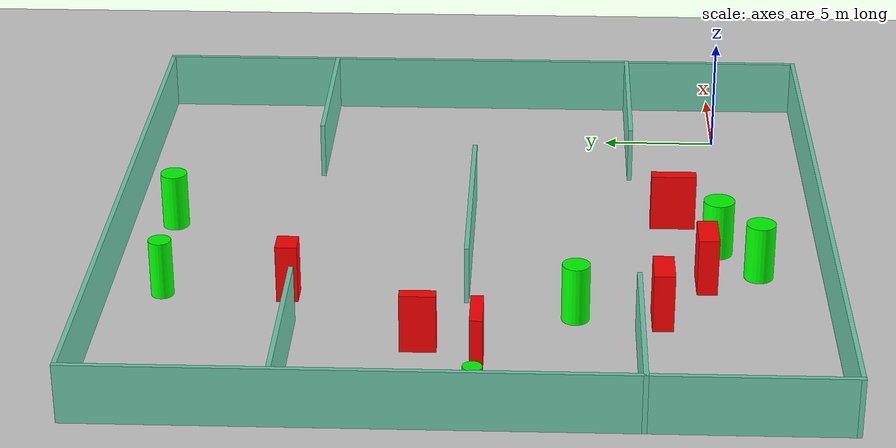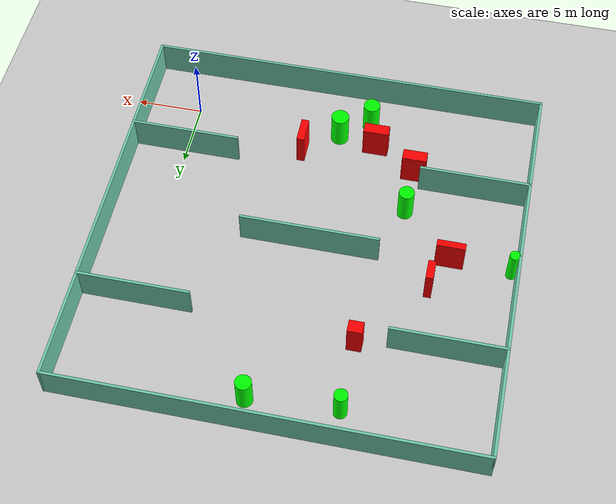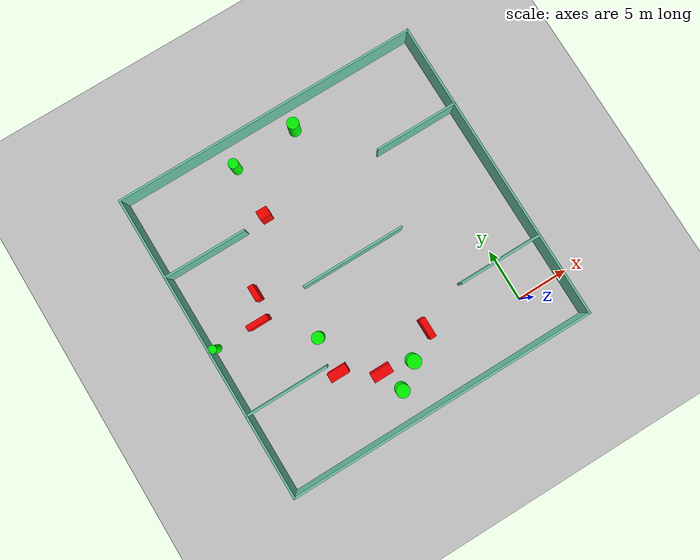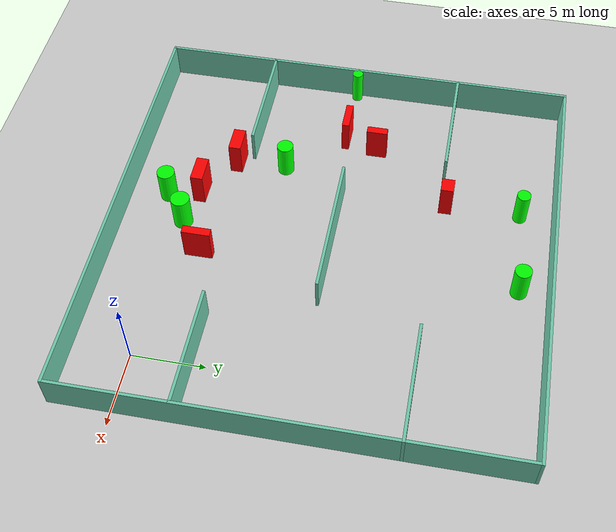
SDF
<sdf version="1.7">
 <world name="default">
  <light name="sun" type="directional">
   <pose>0 0 10 0 -0 0</pose>
   <diffuse>0.8 0.8 0.8 1</diffuse>
   <specular>0.2 0.2 0.2 1</specular>
   <attenuation>
    <range>1000</range>
    <constant>0.9</constant>
    <linear>0.01</linear>
    <quadratic>0.001</quadratic>
   </attenuation>
   <direction>-0.5 0.1 -0.9</direction>
   <spot><inner_angle>0</inner_angle><outer_angle>0</outer_angle><falloff>0</falloff></spot>
  </light>
  <model name="ground_plane">
   <static>1</static>
   <link name="link">
    <collision name="collision">
     <geometry><plane><normal>0 0 1</normal><size>100 100</size></plane></geometry>
     <surface>
      <contact><collide_bitmask>65535</collide_bitmask></contact>
      <friction><ode><mu>100</mu><mu2>50</mu2></ode></friction>
     </surface>
    </collision>
    <visual name="visual">
     <cast_shadows>0</cast_shadows>
     <geometry><plane><normal>0 0 1</normal><size>100 100</size></plane></geometry>
     <material>
      <script><uri>file://media/materials/scripts/gazebo.material</uri><name>Gazebo/Grey</name></script>
     </material>
    </visual>
   </link>
  </model>
  <gravity>0 0 -9.8</gravity>
  <magnetic_field>6e-06 2.3e-05 -4.2e-05</magnetic_field>
  <atmosphere type="adiabatic"/>
  <physics type="ode">
   <max_step_size>0.001</max_step_size>
   <real_time_factor>1</real_time_factor>
   <real_time_update_rate>1000</real_time_update_rate>
  </physics>
  <scene><ambient>0.4 0.4 0.4 1</ambient><background>0.7 0.7 0.7 1</background><shadows>1</shadows></scene>
  <spherical_coordinates>
   <surface_model>EARTH_WGS84</surface_model>
   <latitude_deg>0</latitude_deg>
   <longitude_deg>0</longitude_deg>
   <elevation>0</elevation>
   <heading_deg>0</heading_deg>
  </spherical_coordinates>
  <model name="my_base_walls">
   <link name="Wall_10">
    <collision name="Wall_10_Collision">
     <geometry><box><size>8.2 0.2 2.5</size></box></geometry>
     <pose>0 0 1.25 0 -0 0</pose>
    </collision>
    <visual name="Wall_10_Visual">
     <pose>0 0 1.25 0 -0 0</pose>
     <geometry><box><size>8.2 0.2 2.5</size></box></geometry>
     <material>
      <script><uri>file://media/materials/scripts/gazebo.material</uri><name>Gazebo/Grey</name></script>
      <ambient>0.435294 0.796078 0.67451 1</ambient>
     </material>
     <meta><layer>0</layer></meta>
    </visual>
    <pose>-11 -7 0 0 -0 0</pose>
   </link>
   <link name="Wall_12">
    <collision name="Wall_12_Collision">
     <geometry><box><size>8.2 0.2 2.5</size></box></geometry>
     <pose>0 0 1.25 0 -0 0</pose>
    </collision>
    <visual name="Wall_12_Visual">
     <pose>0 0 1.25 0 -0 0</pose>
     <geometry><box><size>8.2 0.2 2.5</size></box></geometry>
     <material>
      <script><uri>file://media/materials/scripts/gazebo.material</uri><name>Gazebo/Grey</name></script>
      <ambient>0.435294 0.796078 0.67451 1</ambient>
     </material>
     <meta><layer>0</layer></meta>
    </visual>
    <pose>-11 7 0 0 -0 0</pose>
   </link>
   <link name="Wall_14">
    <collision name="Wall_14_Collision">
     <geometry><box><size>8.2 0.2 2.5</size></box></geometry>
     <pose>0 0 1.25 0 -0 0</pose>
    </collision>
    <visual name="Wall_14_Visual">
     <pose>0 0 1.25 0 -0 0</pose>
     <geometry><box><size>8.2 0.2 2.5</size></box></geometry>
     <material>
      <script><uri>file://media/materials/scripts/gazebo.material</uri><name>Gazebo/Grey</name></script>
      <ambient>0.435294 0.796078 0.67451 1</ambient>
     </material>
     <meta><layer>0</layer></meta>
    </visual>
    <pose>11 7 0 0 -0 3.14159</pose>
   </link>
   <link name="Wall_16">
    <collision name="Wall_16_Collision">
     <geometry><box><size>10.2 0.2 2.5</size></box></geometry>
     <pose>0 0 1.25 0 -0 0</pose>
    </collision>
    <visual name="Wall_16_Visual">
     <pose>0 0 1.25 0 -0 0</pose>
     <geometry><box><size>10.2 0.2 2.5</size></box></geometry>
     <material>
      <script><uri>file://media/materials/scripts/gazebo.material</uri><name>Gazebo/Grey</name></script>
      <ambient>0.435294 0.796078 0.67451 1</ambient>
     </material>
     <meta><layer>0</layer></meta>
    </visual>
    <pose>0 0 0 0 -0 3.14159</pose>
   </link>
   <link name="Wall_2">
    <collision name="Wall_2_Collision">
     <geometry><box><size>30.2 0.2 2.5</size></box></geometry>
     <pose>0 0 1.25 0 -0 0</pose>
    </collision>
    <visual name="Wall_2_Visual">
     <pose>0 0 1.25 0 -0 0</pose>
     <geometry><box><size>30.2 0.2 2.5</size></box></geometry>
     <material>
      <script><uri>file://media/materials/scripts/gazebo.material</uri><name>Gazebo/Grey</name></script>
      <ambient>0.435294 0.796078 0.67451 1</ambient>
     </material>
     <meta><layer>0</layer></meta>
    </visual>
    <pose>0 -15 0 0 -0 3.14159</pose>
   </link>
   <link name="Wall_3">
    <collision name="Wall_3_Collision">
     <geometry><box><size>30.2 0.2 2.5</size></box></geometry>
     <pose>0 0 1.25 0 -0 0</pose>
    </collision>
    <visual name="Wall_3_Visual">
     <pose>0 0 1.25 0 -0 0</pose>
     <geometry><box><size>30.2 0.2 2.5</size></box></geometry>
     <material>
      <script><uri>file://media/materials/scripts/gazebo.material</uri><name>Gazebo/Grey</name></script>
      <ambient>0.435294 0.796078 0.67451 1</ambient>
     </material>
     <meta><layer>0</layer></meta>
    </visual>
    <pose>-15 0 0 0 -0 1.5708</pose>
   </link>
   <link name="Wall_4">
    <collision name="Wall_4_Collision">
     <geometry><box><size>30.2 0.2 2.5</size></box></geometry>
     <pose>0 0 1.25 0 -0 0</pose>
    </collision>
    <visual name="Wall_4_Visual">
     <pose>0 0 1.25 0 -0 0</pose>
     <geometry><box><size>30.2 0.2 2.5</size></box></geometry>
     <material>
      <script><uri>file://media/materials/scripts/gazebo.material</uri><name>Gazebo/Grey</name></script>
      <ambient>0.435294 0.796078 0.67451 1</ambient>
     </material>
     <meta><layer>0</layer></meta>
    </visual>
    <pose>0 15 0 0 -0 0</pose>
   </link>
   <link name="Wall_6">
    <collision name="Wall_6_Collision">
     <geometry><box><size>30.2 0.2 2.5</size></box></geometry>
     <pose>0 0 1.25 0 -0 0</pose>
    </collision>
    <visual name="Wall_6_Visual">
     <pose>0 0 1.25 0 -0 0</pose>
     <geometry><box><size>30.2 0.2 2.5</size></box></geometry>
     <material>
      <script><uri>file://media/materials/scripts/gazebo.material</uri><name>Gazebo/Grey</name></script>
      <ambient>0.435294 0.796078 0.67451 1</ambient>
     </material>
     <meta><layer>0</layer></meta>
    </visual>
    <pose>15 0 0 0 -0 1.5708</pose>
   </link>
   <link name="Wall_8">
    <collision name="Wall_8_Collision">
     <geometry><box><size>8.2 0.2 2.5</size></box></geometry>
     <pose>0 0 1.25 0 -0 0</pose>
    </collision>
    <visual name="Wall_8_Visual">
     <pose>0 0 1.25 0 -0 0</pose>
     <geometry><box><size>8.2 0.2 2.5</size></box></geometry>
     <material>
      <script><uri>file://media/materials/scripts/gazebo.material</uri><name>Gazebo/Grey</name></script>
      <ambient>0.435294 0.796078 0.67451 1</ambient>
     </material>
     <meta><layer>0</layer></meta>
    </visual>
    <pose>11 -7 0 0 -0 3.14159</pose>
   </link>
   <static>1</static>
   <pose>-11 11 0 0 -0 0</pose>
  </model>
  <model name="cylinder1">
   <static>1</static>
   <link name="link">
    <inertial>
     <mass>1</mass>
     <inertia><ixx>0.5</ixx><ixy>0</ixy><ixz>0</ixz><iyy>0.5</iyy><iyz>0</iyz><izz>1</izz></inertia>
    </inertial>
    <collision name="collision">
     <geometry><cylinder><radius>0.5736292879978953</radius><length>2.5</length></cylinder></geometry>
    </collision>
    <visual name="visual">
     <geometry><cylinder><radius>0.5736292879978953</radius><length>2.5</length></cylinder></geometry>
     <material>
      <ambient>0 1 0 1</ambient>
      <diffuse>0 1 0 1</diffuse>
      <specular>0.1 0.1 0.1 1</specular>
      <emissive>0 0 0 0</emissive>
     </material>
    </visual>
   </link>
   <pose>-17.306050859484976 6.528363296581427 1.25 0 0 0</pose>
  </model>
  <model name="cylinder2">
   <static>1</static>
   <link name="link">
    <inertial>
     <mass>1</mass>
     <inertia><ixx>0.5</ixx><ixy>0</ixy><ixz>0</ixz><iyy>0.5</iyy><iyz>0</iyz><izz>1</izz></inertia>
    </inertial>
    <collision name="collision">
     <geometry><cylinder><radius>0.3835319037945837</radius><length>2.5</length></cylinder></geometry>
    </collision>
    <visual name="visual">
     <geometry><cylinder><radius>0.3835319037945837</radius><length>2.5</length></cylinder></geometry>
     <material>
      <ambient>0 1 0 1</ambient>
      <diffuse>0 1 0 1</diffuse>
      <specular>0.1 0.1 0.1 1</specular>
      <emissive>0 0 0 0</emissive>
     </material>
    </visual>
   </link>
   <pose>-25.610672785218572 10.436084600961125 1.25 0 0 0</pose>
  </model>
  <model name="cylinder3">
   <static>1</static>
   <link name="link">
    <inertial>
     <mass>1</mass>
     <inertia><ixx>0.5</ixx><ixy>0</ixy><ixz>0</ixz><iyy>0.5</iyy><iyz>0</iyz><izz>1</izz></inertia>
    </inertial>
    <collision name="collision">
     <geometry><cylinder><radius>0.6219950581073741</radius><length>2.5</length></cylinder></geometry>
    </collision>
    <visual name="visual">
     <geometry><cylinder><radius>0.6219950581073741</radius><length>2.5</length></cylinder></geometry>
     <material>
      <ambient>0 1 0 1</ambient>
      <diffuse>0 1 0 1</diffuse>
      <specular>0.1 0.1 0.1 1</specular>
      <emissive>0 0 0 0</emissive>
     </material>
    </visual>
   </link>
   <pose>-13.387804634541844 -1.1991841827729566 1.25 0 0 0</pose>
  </model>
  <model name="cylinder4">
   <static>1</static>
   <link name="link">
    <inertial>
     <mass>1</mass>
     <inertia><ixx>0.5</ixx><ixy>0</ixy><ixz>0</ixz><iyy>0.5</iyy><iyz>0</iyz><izz>1</izz></inertia>
    </inertial>
    <collision name="collision">
     <geometry><cylinder><radius>0.5725556241367142</radius><length>2.5</length></cylinder></geometry>
    </collision>
    <visual name="visual">
     <geometry><cylinder><radius>0.5725556241367142</radius><length>2.5</length></cylinder></geometry>
     <material>
      <ambient>0 1 0 1</ambient>
      <diffuse>0 1 0 1</diffuse>
      <specular>0.1 0.1 0.1 1</specular>
      <emissive>0 0 0 0</emissive>
     </material>
    </visual>
   </link>
   <pose>-9.313362723162147 24.02291025921157 1.25 0 0 0</pose>
  </model>
  <model name="cylinder5">
   <static>1</static>
   <link name="link">
    <inertial>
     <mass>1</mass>
     <inertia><ixx>0.5</ixx><ixy>0</ixy><ixz>0</ixz><iyy>0.5</iyy><iyz>0</iyz><izz>1</izz></inertia>
    </inertial>
    <collision name="collision">
     <geometry><cylinder><radius>0.4780779546296364</radius><length>2.5</length></cylinder></geometry>
    </collision>
    <visual name="visual">
     <geometry><cylinder><radius>0.4780779546296364</radius><length>2.5</length></cylinder></geometry>
     <material>
      <ambient>0 1 0 1</ambient>
      <diffuse>0 1 0 1</diffuse>
      <specular>0.1 0.1 0.1 1</specular>
      <emissive>0 0 0 0</emissive>
     </material>
    </visual>
   </link>
   <pose>-15.734245050721846 23.642989571513297 1.25 0 0 0</pose>
  </model>
  <model name="cylinder6">
   <static>1</static>
   <link name="link">
    <inertial>
     <mass>1</mass>
     <inertia><ixx>0.5</ixx><ixy>0</ixy><ixz>0</ixz><iyy>0.5</iyy><iyz>0</iyz><izz>1</izz></inertia>
    </inertial>
    <collision name="collision">
     <geometry><cylinder><radius>0.663752182974462</radius><length>2.5</length></cylinder></geometry>
    </collision>
    <visual name="visual">
     <geometry><cylinder><radius>0.663752182974462</radius><length>2.5</length></cylinder></geometry>
     <material>
      <ambient>0 1 0 1</ambient>
      <diffuse>0 1 0 1</diffuse>
      <specular>0.1 0.1 0.1 1</specular>
      <emissive>0 0 0 0</emissive>
     </material>
    </visual>
   </link>
   <pose>-11.232254800328402 0.42303668311818665 1.25 0 0 0</pose>
  </model>
  <model name="box1">
   <static>1</static>
   <link name="link">
    <inertial>
     <mass>1</mass>
     <inertia><ixx>0.083</ixx><ixy>0</ixy><ixz>0</ixz><iyy>0.083</iyy><iyz>0</iyz><izz>0.083</izz></inertia>
    </inertial>
    <collision name="collision">
     <geometry><box><size>1.8993769384167765 0.861609149262929 2.5</size></box></geometry>
    </collision>
    <visual name="visual">
     <geometry><box><size>1.8993769384167765 0.861609149262929 2.5</size></box></geometry>
     <material>
      <ambient>1 0 0 1</ambient>
      <diffuse>1 0 0 1</diffuse>
      <specular>0.1 0.1 0.1 1</specular>
      <emissive>0 0 0 0</emissive>
     </material>
    </visual>
    <sensor name="my_contact" type="contact">
     <contact><collision>box_collision</collision><topic>__default_topic__</topic></contact>
    </sensor>
   </link>
   <pose>-14.142880863039181 1.0485359377153864 1.25 0 0 0</pose>
  </model>
  <model name="box2">
   <static>1</static>
   <link name="link">
    <inertial>
     <mass>1</mass>
     <inertia><ixx>0.083</ixx><ixy>0</ixy><ixz>0</ixz><iyy>0.083</iyy><iyz>0</iyz><izz>0.083</izz></inertia>
    </inertial>
    <collision name="collision">
     <geometry><box><size>2.0733905064533307 0.5170686014523298 2.5</size></box></geometry>
    </collision>
    <visual name="visual">
     <geometry><box><size>2.0733905064533307 0.5170686014523298 2.5</size></box></geometry>
     <material>
      <ambient>1 0 0 1</ambient>
      <diffuse>1 0 0 1</diffuse>
      <specular>0.1 0.1 0.1 1</specular>
      <emissive>0 0 0 0</emissive>
     </material>
    </visual>
    <sensor name="my_contact" type="contact">
     <contact><collision>box_collision</collision><topic>__default_topic__</topic></contact>
    </sensor>
   </link>
   <pose>-21.12113799998116 10.422280496904976 1.25 0 0 0</pose>
  </model>
  <model name="box3">
   <static>1</static>
   <link name="link">
    <inertial>
     <mass>1</mass>
     <inertia><ixx>0.083</ixx><ixy>0</ixy><ixz>0</ixz><iyy>0.083</iyy><iyz>0</iyz><izz>0.083</izz></inertia>
    </inertial>
    <collision name="collision">
     <geometry><box><size>0.5428154868788992 1.4734015465538566 2.5</size></box></geometry>
    </collision>
    <visual name="visual">
     <geometry><box><size>0.5428154868788992 1.4734015465538566 2.5</size></box></geometry>
     <material>
      <ambient>1 0 0 1</ambient>
      <diffuse>1 0 0 1</diffuse>
      <specular>0.1 0.1 0.1 1</specular>
      <emissive>0 0 0 0</emissive>
     </material>
    </visual>
    <sensor name="my_contact" type="contact">
     <contact><collision>box_collision</collision><topic>__default_topic__</topic></contact>
    </sensor>
   </link>
   <pose>-20.004636877703692 12.787373643054115 1.25 0 0 0</pose>
  </model>
  <model name="box4">
   <static>1</static>
   <link name="link">
    <inertial>
     <mass>1</mass>
     <inertia><ixx>0.083</ixx><ixy>0</ixy><ixz>0</ixz><iyy>0.083</iyy><iyz>0</iyz><izz>0.083</izz></inertia>
    </inertial>
    <collision name="collision">
     <geometry><box><size>1.0644335771542588 0.9038018262917247 2.5</size></box></geometry>
    </collision>
    <visual name="visual">
     <geometry><box><size>1.0644335771542588 0.9038018262917247 2.5</size></box></geometry>
     <material>
      <ambient>1 0 0 1</ambient>
      <diffuse>1 0 0 1</diffuse>
      <specular>0.1 0.1 0.1 1</specular>
      <emissive>0 0 0 0</emissive>
     </material>
    </visual>
    <sensor name="my_contact" type="contact">
     <contact><collision>box_collision</collision><topic>__default_topic__</topic></contact>
    </sensor>
   </link>
   <pose>-15.731976119183411 18.39227165710269 1.25 0 0 0</pose>
  </model>
  <model name="box5">
   <static>1</static>
   <link name="link">
    <inertial>
     <mass>1</mass>
     <inertia><ixx>0.083</ixx><ixy>0</ixy><ixz>0</ixz><iyy>0.083</iyy><iyz>0</iyz><izz>0.083</izz></inertia>
    </inertial>
    <collision name="collision">
     <geometry><box><size>1.8114017278585157 0.8663875857325991 2.5</size></box></geometry>
    </collision>
    <visual name="visual">
     <geometry><box><size>1.8114017278585157 0.8663875857325991 2.5</size></box></geometry>
     <material>
      <ambient>1 0 0 1</ambient>
      <diffuse>1 0 0 1</diffuse>
      <specular>0.1 0.1 0.1 1</specular>
      <emissive>0 0 0 0</emissive>
     </material>
    </visual>
    <sensor name="my_contact" type="contact">
     <contact><collision>box_collision</collision><topic>__default_topic__</topic></contact>
    </sensor>
   </link>
   <pose>-17.362359807066337 2.9975098133333855 1.25 0 0 0</pose>
  </model>
  <model name="box6">
   <static>1</static>
   <link name="link">
    <inertial>
     <mass>1</mass>
     <inertia><ixx>0.083</ixx><ixy>0</ixy><ixz>0</ixz><iyy>0.083</iyy><iyz>0</iyz><izz>0.083</izz></inertia>
    </inertial>
    <collision name="collision">
     <geometry><box><size>0.5802505440446231 1.9485039338069228 2.5</size></box></geometry>
    </collision>
    <visual name="visual">
     <geometry><box><size>0.5802505440446231 1.9485039338069228 2.5</size></box></geometry>
     <material>
      <ambient>1 0 0 1</ambient>
      <diffuse>1 0 0 1</diffuse>
      <specular>0.1 0.1 0.1 1</specular>
      <emissive>0 0 0 0</emissive>
     </material>
    </visual>
    <sensor name="my_contact" type="contact">
     <contact><collision>box_collision</collision><topic>__default_topic__</topic></contact>
    </sensor>
   </link>
   <pose>-8.71289964638217 2.243577211262374 1.25 0 0 0</pose>
  </model>
 </world>
</sdf>
